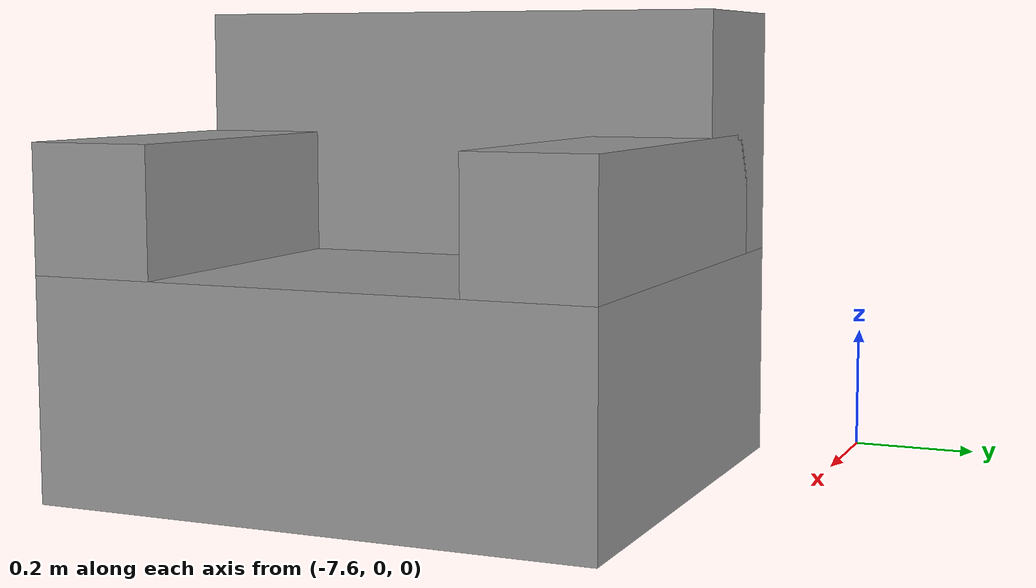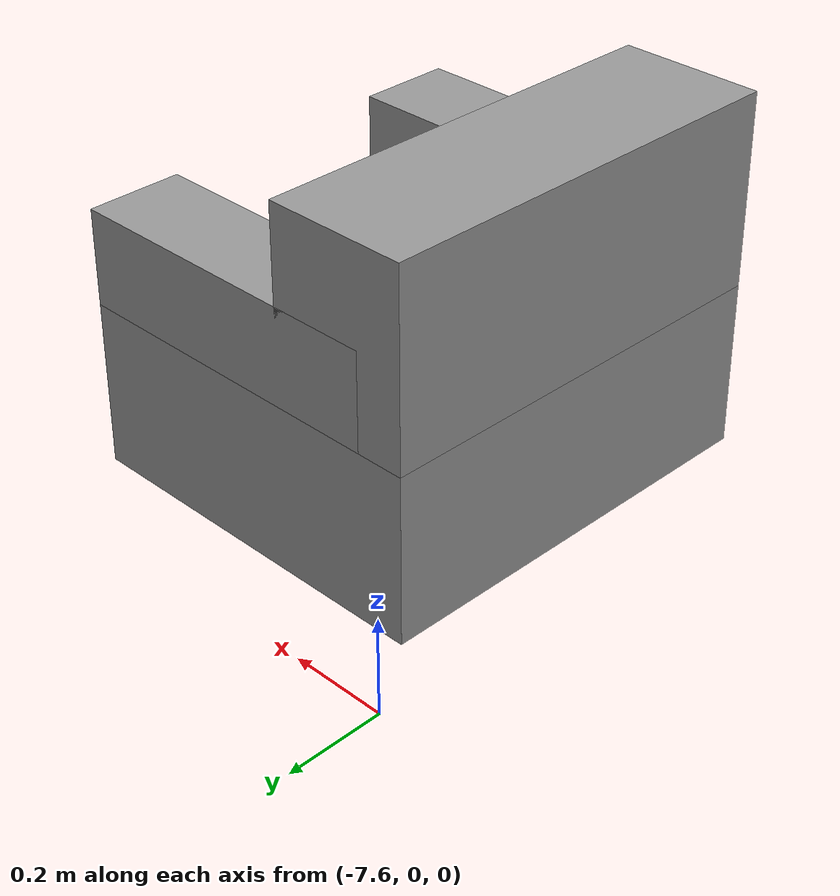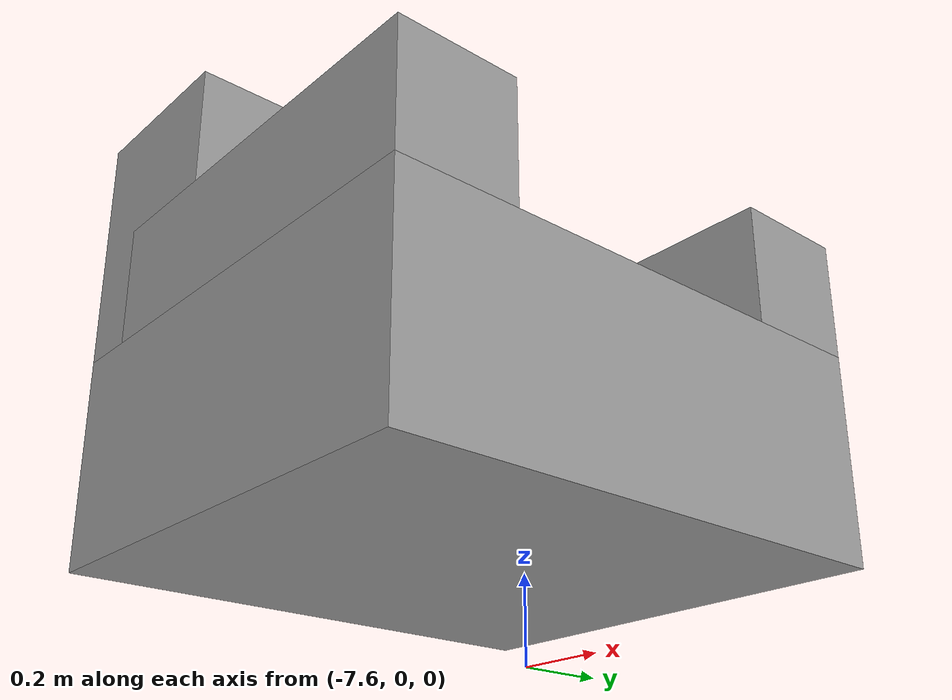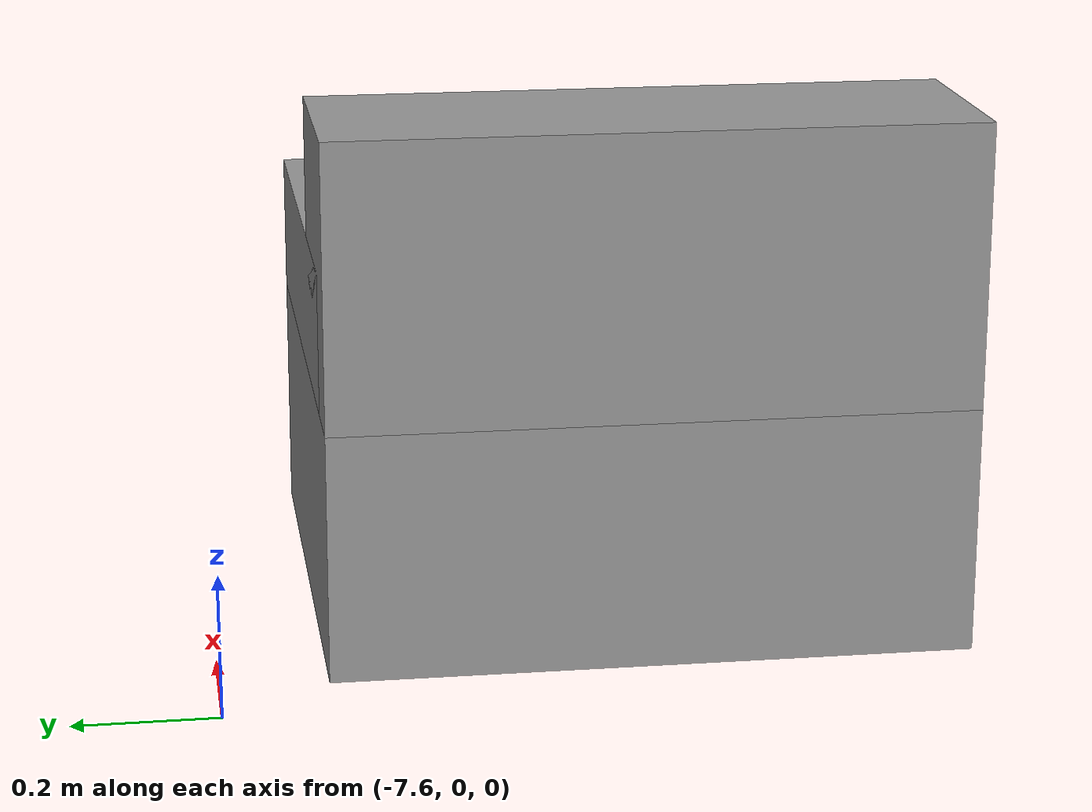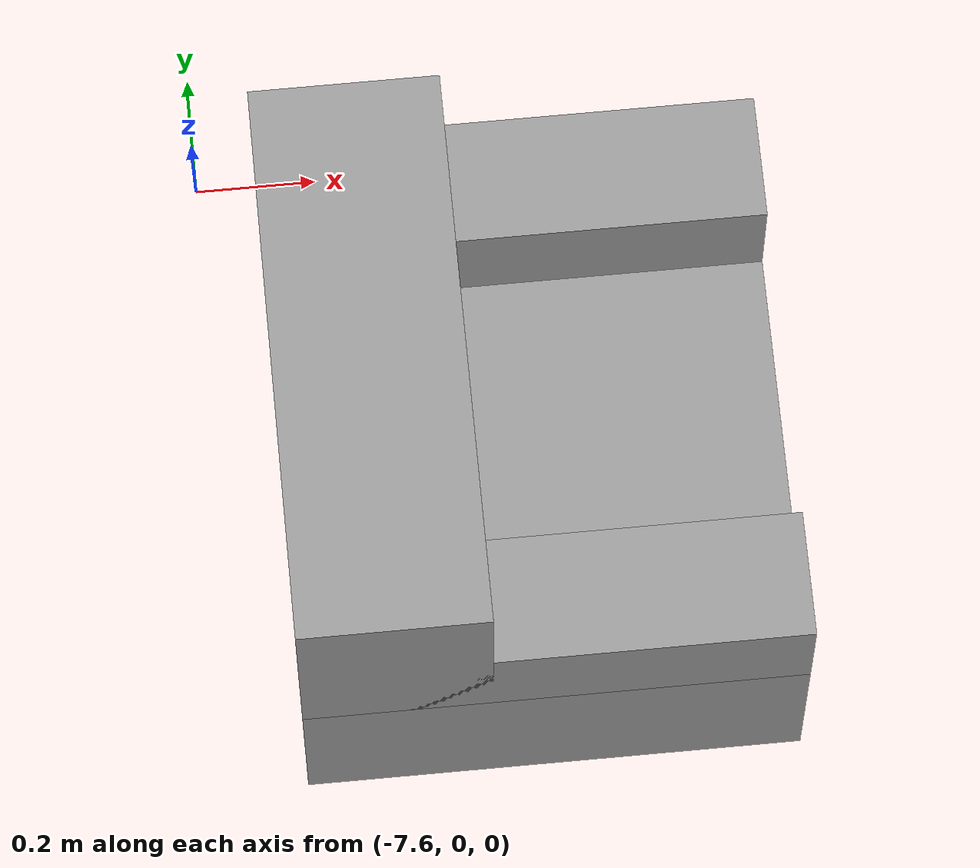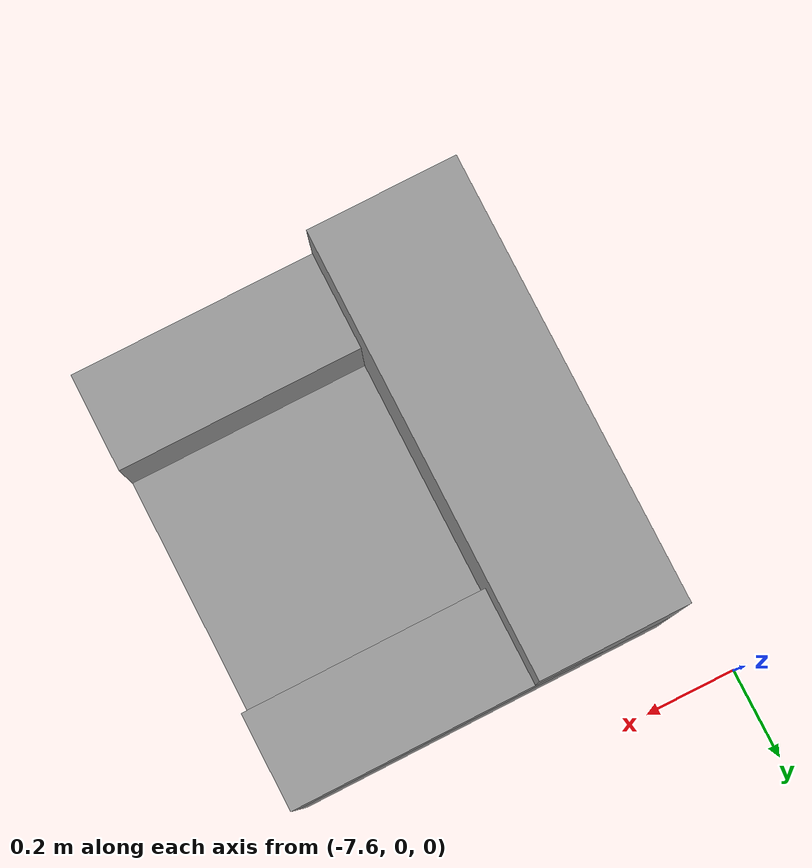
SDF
<?xml version="1.0" ?>
<sdf version='1.4'>
  <model name='sofa_x1_2_salon'>
    <link name='sofa_link'>
      <pose>0 0 0 0 -0 0</pose>
      <inertial>
        <pose>0 0.01875 0.309375 0 -0 0</pose>
        <mass>8</mass>
        <inertia>
          <ixx>0.705859</ixx>
          <ixy>0</ixy>
          <ixz>0</ixz>
          <iyy>0.886172</iyy>
          <iyz>-0.0385938</iyz>
          <izz>0.709687</izz>
        </inertia>
      </inertial>
      <collision name='sofa_link_collision'>
        <pose>0 0 0.175 0 -0 0</pose>
        <geometry>
          <box>
            <size>0.9 0.8 0.35</size>
          </box>
        </geometry>
        <surface>
          <contact>
            <ode/>
          </contact>
          <friction>
            <ode>
              <mu>100</mu>
              <mu2>100</mu2>
            </ode>
          </friction>
          <bounce/>
        </surface>
        <max_contacts>10</max_contacts>
      </collision>
      <collision name='sofa_link_collision_brazo_1_link'>
        <pose>0.35 -0.05 0.45 0 -0 0</pose>
        <geometry>
          <box>
            <size>0.2 0.7 0.2</size>
          </box>
        </geometry>
        <surface>
          <contact>
            <ode/>
          </contact>
          <friction>
            <ode>
              <mu>100</mu>
              <mu2>100</mu2>
            </ode>
          </friction>
          <bounce/>
        </surface>
        <surface>
          <contact>
            <ode/>
          </contact>
          <friction>
            <ode>
              <mu>100</mu>
              <mu2>100</mu2>
            </ode>
          </friction>
        </surface>
        <max_contacts>10</max_contacts>
      </collision>
      <collision name='sofa_link_collision_brazo_2_link'>
        <pose>-0.35 -0.05 0.45 0 -0 0</pose>
        <geometry>
          <box>
            <size>0.2 0.7 0.2</size>
          </box>
        </geometry>
        <surface>
          <contact>
            <ode/>
          </contact>
          <friction>
            <ode>
              <mu>100</mu>
              <mu2>100</mu2>
            </ode>
          </friction>
          <bounce/>
        </surface>
        <surface>
          <contact>
            <ode/>
          </contact>
          <friction>
            <ode>
              <mu>100</mu>
              <mu2>100</mu2>
            </ode>
          </friction>
        </surface>
        <max_contacts>10</max_contacts>
      </collision>
      <collision name='sofa_link_collision_respaldo_link'>
        <pose>0 0.25 0.55 0 -0 0</pose>
        <geometry>
          <box>
            <size>0.9 0.3 0.4</size>
          </box>
        </geometry>
        <surface>
          <contact>
            <ode/>
          </contact>
          <friction>
            <ode>
              <mu>100</mu>
              <mu2>100</mu2>
            </ode>
          </friction>
          <bounce/>
        </surface>
        <surface>
          <contact>
            <ode/>
          </contact>
          <friction>
            <ode>
              <mu>100</mu>
              <mu2>100</mu2>
            </ode>
          </friction>
        </surface>
        <max_contacts>10</max_contacts>
      </collision>
      <visual name='sofa_link_visual'>
        <pose>0 0 0.175 0 -0 0</pose>
        <geometry>
          <box>
            <size>0.9 0.8 0.35</size>
          </box>
        </geometry>
        <material>
          <script>
            <name>Gazebo/Grey</name>
            <uri>__default__</uri>
          </script>
        </material>
      </visual>
      <visual name='sofa_link_visual_brazo_1_link'>
        <pose>0.35 -0.05 0.45 0 -0 0</pose>
        <geometry>
          <box>
            <size>0.2 0.7 0.2</size>
          </box>
        </geometry>
        <material>
          <script>
            <name>Gazebo/Grey</name>
            <uri>__default__</uri>
          </script>
        </material>
      </visual>
      <visual name='sofa_link_visual_brazo_2_link'>
        <pose>-0.35 -0.05 0.45 0 -0 0</pose>
        <geometry>
          <box>
            <size>0.2 0.7 0.2</size>
          </box>
        </geometry>
        <material>
          <script>
            <name>Gazebo/Grey</name>
            <uri>__default__</uri>
          </script>
        </material>
      </visual>
      <visual name='sofa_link_visual_respaldo_link'>
        <pose>0 0.25 0.55 0 -0 0</pose>
        <geometry>
          <box>
            <size>0.9 0.3 0.4</size>
          </box>
        </geometry>
        <material>
          <script>
            <name>Gazebo/Grey</name>
            <uri>__default__</uri>
          </script>
        </material>
      </visual>
      <velocity_decay>
        <linear>0</linear>
        <angular>0</angular>
      </velocity_decay>
      <velocity_decay>
        <linear>0</linear>
        <angular>0</angular>
      </velocity_decay>
      <velocity_decay>
        <linear>0</linear>
        <angular>0</angular>
      </velocity_decay>
      <gravity>1</gravity>
      <velocity_decay>
        <linear>0</linear>
        <angular>0</angular>
      </velocity_decay>
      <self_collide>1</self_collide>
      <kinematic>0</kinematic>
    </link>
    <pose>-7.1 -0.6 0 0 -0 1.57</pose>
    <static>0</static>
  </model>
</sdf>
